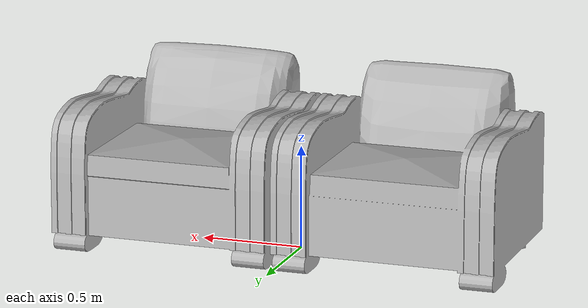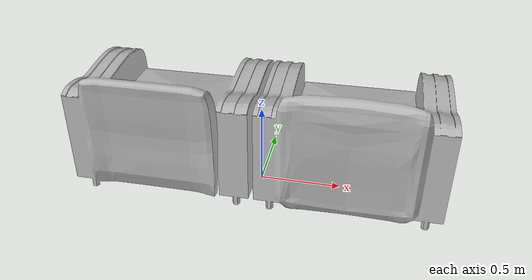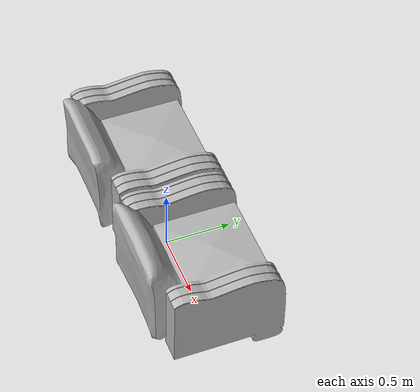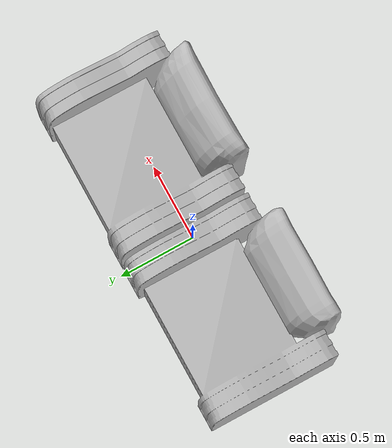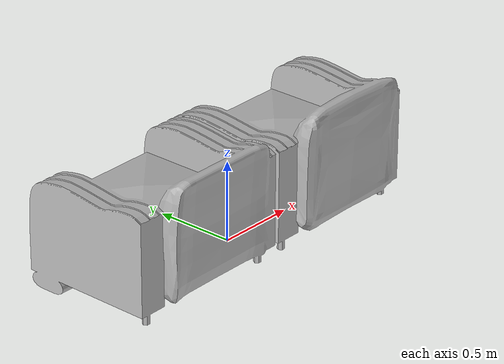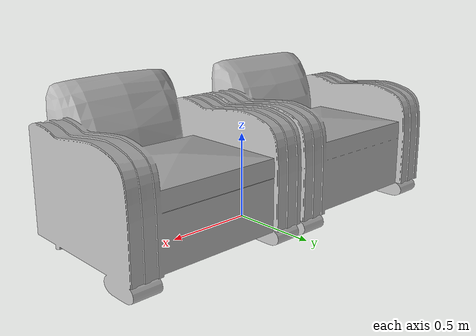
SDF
<?xml version="1.0"?>
<sdf version="1.6">
  <model name="lodge_sofa">
    <static>true</static>
    <link name="l">
      <visual name="v">
        <pose>-2.483 4.986 0 1.5708 0 0</pose>
        <geometry>
          <mesh>
            <uri>model://lodge_sofa/meshes/lodge_sofa.obj</uri>
            <scale>0.097 0.097 0.097</scale>
          </mesh>
        </geometry>
      </visual>
      <collision name="c">
        <pose>0 0 0.42 0 0 0</pose>
        <geometry><box><size>2.18 0.95 0.85</size></box></geometry>
      </collision>
    </link>
  </model>
</sdf>
